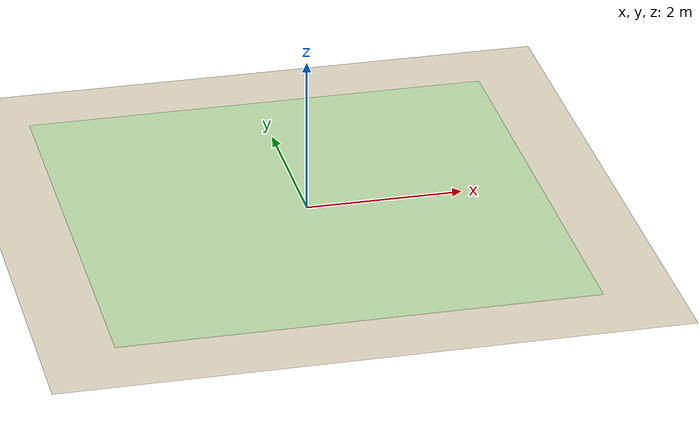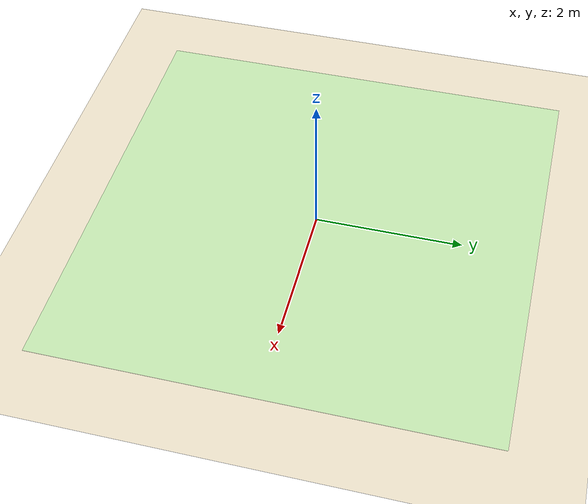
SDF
<?xml version="1.0"?>
<sdf version="1.8">
  <world name="collision_test">
    <physics name='1ms' type='ignored'>
      <max_step_size>0.001</max_step_size>
      <real_time_factor>1</real_time_factor>
      <real_time_update_rate>1000</real_time_update_rate>
    </physics>
    <plugin name='ignition::gazebo::systems::Physics' filename='ignition-gazebo-physics-system'/>
    <plugin name='ignition::gazebo::systems::UserCommands' filename='ignition-gazebo-user-commands-system'/>
    <plugin name='ignition::gazebo::systems::SceneBroadcaster' filename='ignition-gazebo-scene-broadcaster-system'/>
    <plugin filename="ignition-gazebo-sensors-system" name="ignition::gazebo::systems::Sensors">
      <render_engine>ogre2</render_engine>
    </plugin>

    <plugin filename="libignition-gazebo-contact-system.so" name="ignition::gazebo::systems::Contact">
    </plugin>
    <scene>
      <ambient>1.0 1.0 1.0</ambient>
      <background>0.8 0.8 0.8</background>
    </scene>
    <spherical_coordinates>
      <surface_model>EARTH_WGS84</surface_model>
      <world_frame_orientation>ENU</world_frame_orientation>
      <latitude_deg>-22.9</latitude_deg>
      <longitude_deg>-43.2</longitude_deg>
      <elevation>0</elevation>
      <heading_deg>0</heading_deg>
    </spherical_coordinates>

    <light type="directional" name="sun">
      <cast_shadows>true</cast_shadows>
      <pose>0 0 10 0 0 0</pose>
      <diffuse>0.8 0.8 0.8 1</diffuse>
      <specular>0.2 0.2 0.2 1</specular>
      <attenuation>
        <range>1000</range>
        <constant>0.9</constant>
        <linear>0.01</linear>
        <quadratic>0.001</quadratic>
      </attenuation>
      <direction>-0.5 0.1 -0.9</direction>
    </light>

    <model name="ground_plane">
      <static>true</static>
      <link name="link">
        <collision name="collision">
          <geometry>
            <plane>
              <normal>0 0 1</normal>
              <size>100 100</size>
            </plane>
          </geometry>
        </collision>
        <visual name="visual">
          <geometry>
            <plane>
              <normal>0 0 1</normal>
              <size>100 100</size>
            </plane>
          </geometry>
          <material>
            <ambient>0.94 0.90 0.81 1</ambient>
            <diffuse>0.94 0.90 0.81 1</diffuse>
            <specular>1 1 1 0</specular>
          </material>
        </visual>
      </link>
    </model>

    <model name="green_square_overlay">
      <static>true</static>
      <pose>0 0 0.005 0 0 0</pose>
      <link name="link">
        <visual name="visual">
          <geometry>
            <box>
              <size>6 6 0.01</size>
            </box>
          </geometry>
          <material>
            <ambient>0.6 1.0 0.6 0.4</ambient>
            <diffuse>0.6 1.0 0.6 0.4</diffuse>
            <transparency>0.6</transparency>
          </material>
        </visual>
      </link>
    </model>

  </world>
</sdf>
